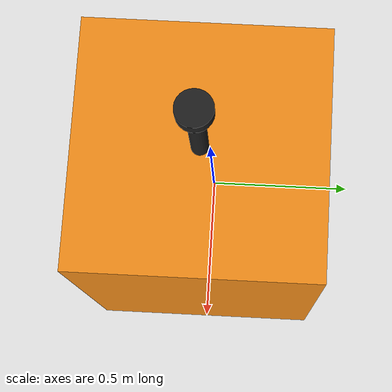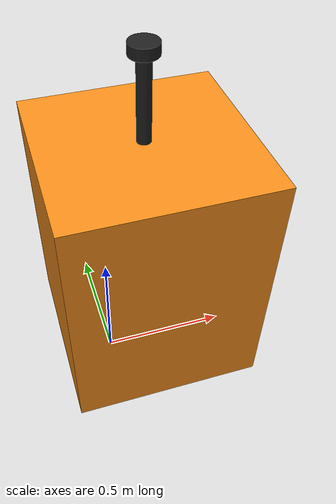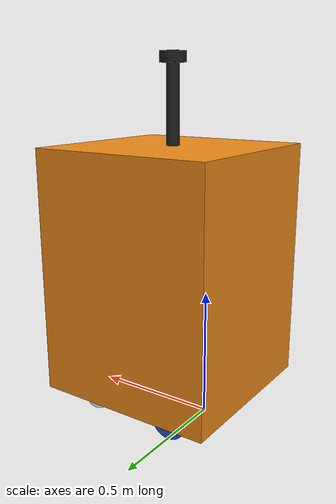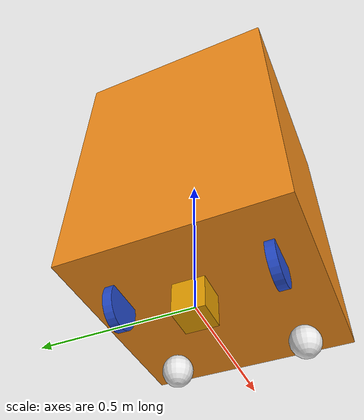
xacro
<?xml version="1.0"?>
<robot xmlns:xacro="http://www.ros.org/wiki/xacro"  name="robot">

    <xacro:arg name="use_ros2_control" default="true"/>
    <xacro:arg name="sim_mode" default="false"/>

    <xacro:include filename="mws_robot.materials.xacro" />
    <xacro:include filename="inertial_macros.xacro" />
    <xacro:include filename="mws_robot_core.xacro" />

    <xacro:include filename="mws_robot.ros2_control.xacro" />

    <xacro:unless value="$(arg sim_mode)">
        <xacro:include filename="gazebo_control.xacro" />
    </xacro:unless>

    <xacro:include filename="lidar.xacro" />

    <xacro:include filename="imu.xacro" />

</robot>

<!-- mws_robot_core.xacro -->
<robot xmlns:xacro="http://www.ros.org/wiki/xacro" >

    <xacro:property name="chassis_length" value="0.72"/>  <!-- Length and offset is specified in Meters -->
    <xacro:property name="chassis_width" value="0.71"/>
    <xacro:property name="chassis_height" value="0.955"/>
    <xacro:property name="chassis_offset_z" value="0.105"/>
    <xacro:property name="chassis_offset_x" value="0.205"/>
    <xacro:property name="chassis_mass" value="30.0"/>  <!-- Mass is specified in Kilograms -->
    <xacro:property name="wheel_radius" value="0.0735"/>
    <xacro:property name="wheel_thickness" value="0.03"/>
    <xacro:property name="wheel_mass" value="1.5"/>
    <xacro:property name="wheel_offset_x" value="0.226"/>
    <xacro:property name="wheel_offset_y" value="0.245"/>
    <xacro:property name="wheel_offset_z" value="${wheel_radius}"/>
    <xacro:property name="caster_wheel_radius" value="${chassis_offset_z / 2}"/>
    <xacro:property name="caster_wheel_mass" value="1"/>
    <xacro:property name="caster_wheel_offset_x" value="0.57"/>
    <xacro:property name="caster_wheel_offset_y" value="0.22"/>
    <xacro:property name="caster_wheel_offset_z" value="${-chassis_offset_z / 2}"/>

    <!-- BASE LINK -->

    <link name="base_link">

    </link>

    <!-- BASE_FOOTPRINT LINK -->

    <joint name="base_footprint_joint" type="fixed">
        <parent link="base_link"/>
        <child link="base_footprint"/>
        <origin xyz="0 0 0" rpy="0 0 0"/>
    </joint>

    <link name="base_footprint">
    </link>

    <!-- CHASSIS LINK -->

    <joint name="chassis_joint" type="fixed">
        <parent link="base_link"/>
        <child link="chassis"/>
        <origin xyz="${-chassis_offset_x} 0 ${chassis_offset_z}"/>
    </joint>

    <link name="chassis">
        <visual>
            <origin xyz="${chassis_length/2} 0 ${chassis_height/2}"/>
            <geometry>
                <box size="${chassis_length} ${chassis_width} ${chassis_height}"/>
            </geometry>
            <material name="orange"/>
        </visual>
        <collision>
            <origin xyz="${chassis_length/2} 0 ${chassis_height/2}"/>
            <geometry>
                <box size="${chassis_length} ${chassis_width} ${chassis_height}"/>
            </geometry>
        </collision>
        <xacro:inertial_box mass="${chassis_mass}" x="${chassis_length}" y="${chassis_width}" z="${chassis_height}">
            <origin xyz="${chassis_length/2} 0 ${chassis_height/2}" rpy="0 0 0"/>
        </xacro:inertial_box>
    </link>

    <gazebo reference="chassis">
        <material>Gazebo/Orange</material>
    </gazebo>

    <!-- LEFT WHEEL LINK -->

    <joint name="left_wheel_joint" type="continuous">
        <parent link="base_link"/>
        <child link="left_wheel"/>
        <origin xyz="0 ${wheel_offset_y} ${wheel_offset_z}" rpy="-${pi/2} 0 0" />
        <axis xyz="0 0 1"/>
    </joint>

    <link name="left_wheel">
        <visual>
            <geometry>
                <cylinder radius="${wheel_radius}" length="${wheel_thickness}"/>
            </geometry>
            <material name="blue"/>
        </visual>
        <collision>
            <geometry>
                <sphere radius="${wheel_radius}"/>
            </geometry>
        </collision>
        <xacro:inertial_cylinder mass="${wheel_mass}" length="${wheel_thickness}" radius="${wheel_radius}">
            <origin xyz="0 0 0" rpy="0 0 0"/>
        </xacro:inertial_cylinder>
    </link>

    <gazebo reference="left_wheel">
        <material>Gazebo/Blue</material>
    </gazebo>

    <!-- RIGHT WHEEL LINK -->

    <joint name="right_wheel_joint" type="continuous">
        <parent link="base_link"/>
        <child link="right_wheel"/>
        <origin xyz="0 ${-wheel_offset_y} ${wheel_offset_z}" rpy="${pi/2} 0 0" />
        <axis xyz="0 0 -1"/>
    </joint>

    <link name="right_wheel">
        <visual>
            <geometry>
                <cylinder radius="${wheel_radius}" length="${wheel_thickness}"/>
            </geometry>
            <material name="blue"/>
        </visual>
        <collision>
            <geometry>
                <sphere radius="${wheel_radius}"/>
            </geometry>
        </collision>
        <xacro:inertial_cylinder mass="${wheel_mass}" length="${wheel_thickness}" radius="${wheel_radius}">
            <origin xyz="0 0 0" rpy="0 0 0"/>
        </xacro:inertial_cylinder>
    </link>

    <gazebo reference="right_wheel">
        <material>Gazebo/Blue</material>
    </gazebo>

    <!-- LEFT CASTER WHEEL LINK -->

    <joint name="left_caster_wheel_joint" type="fixed">
        <parent link="chassis"/>
        <child link="left_caster_wheel"/>
        <origin xyz="${caster_wheel_offset_x} ${caster_wheel_offset_y} ${caster_wheel_offset_z}"/>
    </joint>

    <link name="left_caster_wheel">
        <visual>
            <geometry>
                <sphere radius="${caster_wheel_radius}"/>
            </geometry>
            <material name="white"/>
        </visual>
        <collision>
            <geometry>
                <sphere radius="${caster_wheel_radius}"/>
            </geometry>
        </collision>
        <xacro:inertial_sphere mass="${caster_wheel_mass}" radius="${caster_wheel_radius}">
            <origin xyz="0 0 0" rpy="0 0 0"/>
        </xacro:inertial_sphere>
    </link>

    <gazebo reference="left_caster_wheel">
        <material>Gazebo/White</material>
        <mu1 value="0.001"/>
        <mu2 value="0.001"/>
    </gazebo>

    <!-- RIGHT CASTER WHEEL LINK -->

    <joint name="right_caster_wheel_joint" type="fixed">
        <parent link="chassis"/>
        <child link="right_caster_wheel"/>
        <origin xyz="${caster_wheel_offset_x} ${-caster_wheel_offset_y} ${caster_wheel_offset_z}"/>
    </joint>

    <link name="right_caster_wheel">
        <visual>
            <geometry>
                <sphere radius="${caster_wheel_radius}"/>
            </geometry>
            <material name="white"/>
        </visual>
        <collision>
            <geometry>
                <sphere radius="${caster_wheel_radius}"/>
            </geometry>
        </collision>
        <xacro:inertial_sphere mass="${caster_wheel_mass}" radius="${caster_wheel_radius}">
            <origin xyz="0 0 0" rpy="0 0 0"/>
        </xacro:inertial_sphere>
    </link>

    <gazebo reference="right_caster_wheel">
        <material>Gazebo/White</material>
        <mu1 value="0.001"/>
        <mu2 value="0.001"/>
    </gazebo>

</robot>

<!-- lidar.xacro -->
<robot xmlns:xacro="http://www.ros.org/wiki/xacro" >

    <xacro:property name="laser_frame_offset_x" value="0.36"/>  <!-- Length and offset is specified in Meters -->
    <xacro:property name="laser_frame_offset_z" value="1.253"/>
    <xacro:property name="lidar_radius" value="0.05"/>
    <xacro:property name="lidar_length" value="0.04"/>
    <xacro:property name="lidar_mass" value="0.5"/>
    <xacro:property name="lidar_cylinder_stand_radius" value="0.025"/>
    <xacro:property name="lidar_cylinder_stand_length" value="0.3"/>
    <xacro:property name="lidar_cylinder_stand_mass" value="1"/>

    <joint name="laser_joint" type="fixed">
        <parent link="chassis"/>
        <child link="laser_frame"/>
        <origin xyz="${laser_frame_offset_x} 0 ${laser_frame_offset_z}" rpy="0 0 0"/>
    </joint>

    <link name="laser_frame">
        <!-- LIDAR -->
        <visual>
            <origin xyz="0 0 ${lidar_length / 2}"/>
            <geometry>
                <cylinder radius="${lidar_radius}" length="${lidar_length}"/>
            </geometry>
            <material name="black"/>
        </visual>
        <collision>
            <origin xyz="0 0 ${lidar_length / 2}"/>
            <geometry>
                <cylinder radius="${lidar_radius}" length="${lidar_length}"/>
            </geometry>
        </collision>
        <xacro:inertial_cylinder mass="${lidar_mass}" length="${lidar_length}" radius="${lidar_radius}">
            <origin xyz="0 0 ${lidar_length / 2}"/>
        </xacro:inertial_cylinder>

        <!-- LIDAR CYLINDER STAND -->
        <visual>
            <origin xyz="0 0 ${-lidar_cylinder_stand_length / 2}"/>
            <geometry>
                <cylinder radius="${lidar_cylinder_stand_radius}" length="${lidar_cylinder_stand_length}"/>
            </geometry>
            <material name="black"/>
        </visual>
        <collision>
            <origin xyz="0 0 ${-lidar_cylinder_stand_length / 2}"/>
            <geometry>
                <cylinder radius="${lidar_cylinder_stand_radius}" length="${lidar_cylinder_stand_length}"/>
            </geometry>
        </collision>
        <xacro:inertial_cylinder mass="${lidar_cylinder_stand_mass}" length="${lidar_cylinder_stand_length}" radius="${lidar_cylinder_stand_radius}">
            <origin xyz="0 0 ${-lidar_cylinder_stand_length / 2}"/>
        </xacro:inertial_cylinder>
    </link>

    <gazebo reference="laser_frame">
        <material>Gazebo/Black</material>

        <sensor name="laser" type="ray">
            <pose> 0 0 0 0 0 0 </pose>
            <visualize>true</visualize>
            <update_rate>10</update_rate>
            <ray>
                <scan>
                    <horizontal>
                        <samples>360</samples>
                        <min_angle>-3.14</min_angle>
                        <max_angle>3.14</max_angle>
                    </horizontal>
                </scan>
                <range>
                    <min>0.3</min>
                    <max>12</max>
                </range>
            </ray>
            <plugin name="laser_controller" filename="libgazebo_ros_ray_sensor.so">
                <ros>
                    <argument>~/out:=scan</argument>
                </ros>
                <output_type>sensor_msgs/LaserScan</output_type>
                <frame_name>laser_frame</frame_name>
            </plugin>
        </sensor>
    </gazebo>

</robot>

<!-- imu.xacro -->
<robot xmlns:xacro="http://www.ros.org/wiki/xacro" >

    <joint name="imu_joint" type="fixed">
        <parent link="base_link"/>
        <child link="imu_link"/>
        <origin xyz="0 0 0.01"/>
    </joint>

    <link name="imu_link" type="fixed">
        <visual>
            <geometry>
                <box size="0.1 0.1 0.1"/>
            </geometry>
        </visual>

        <collision>
            <geometry>
                <box size="0.1 0.1 0.1"/>
            </geometry>
        </collision>
    </link>

</robot>
